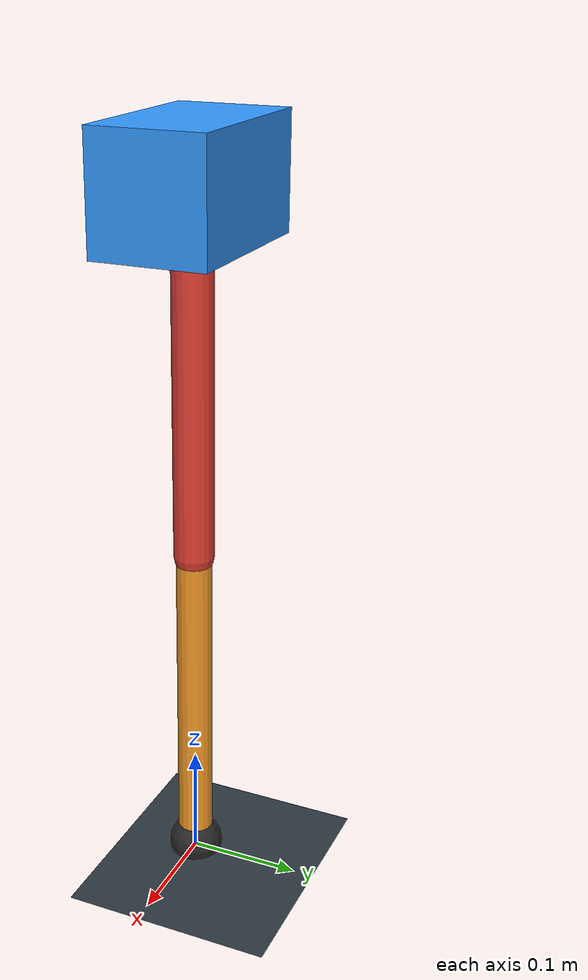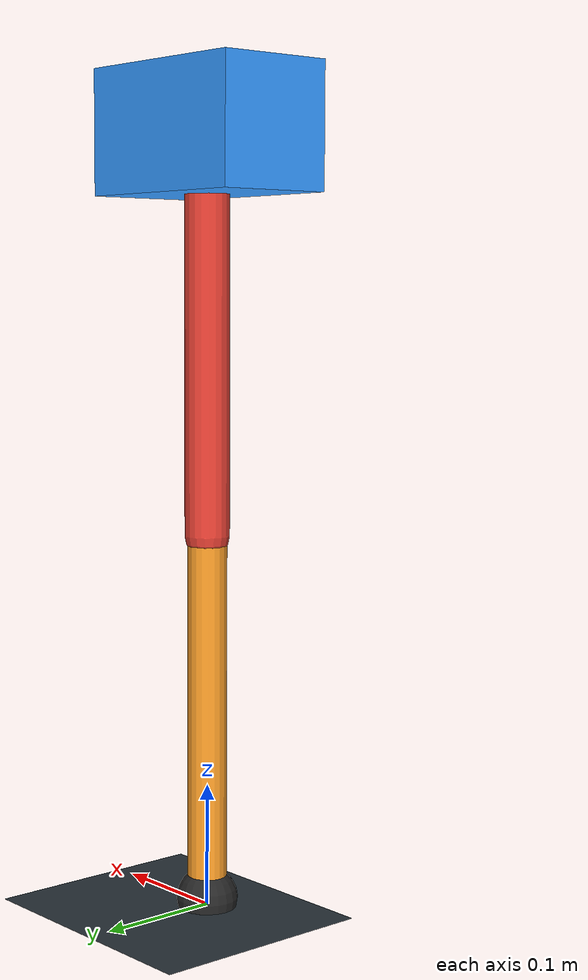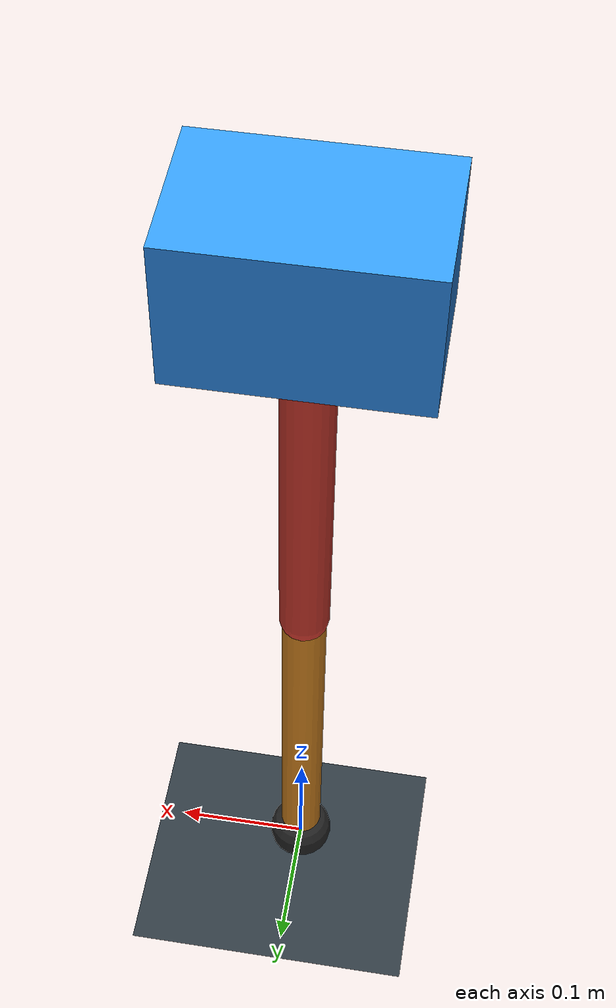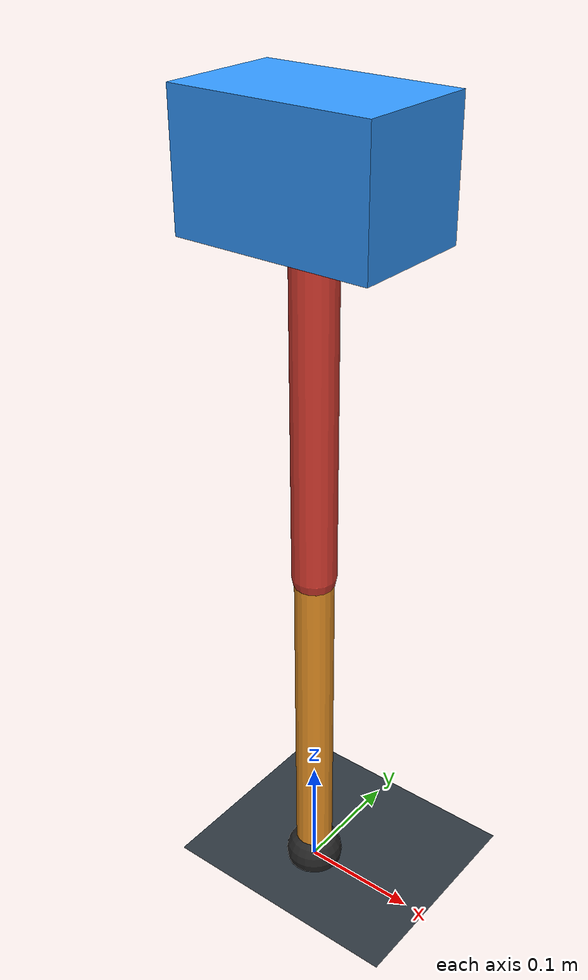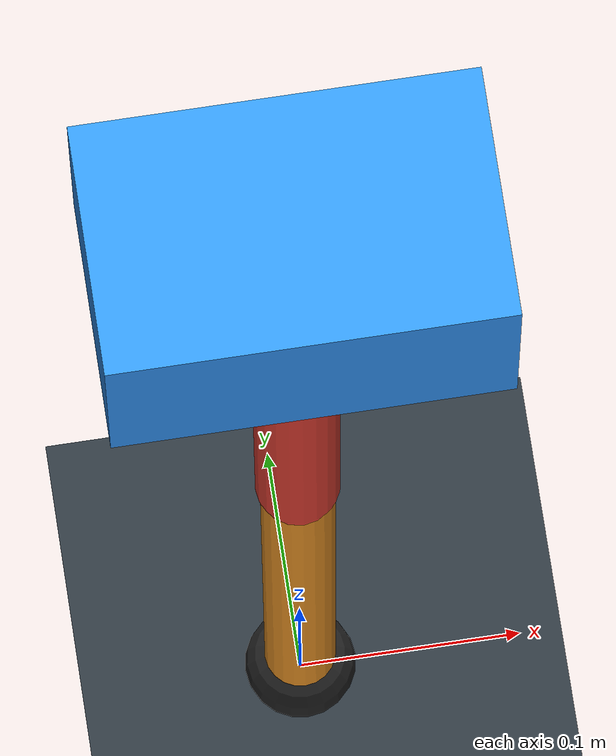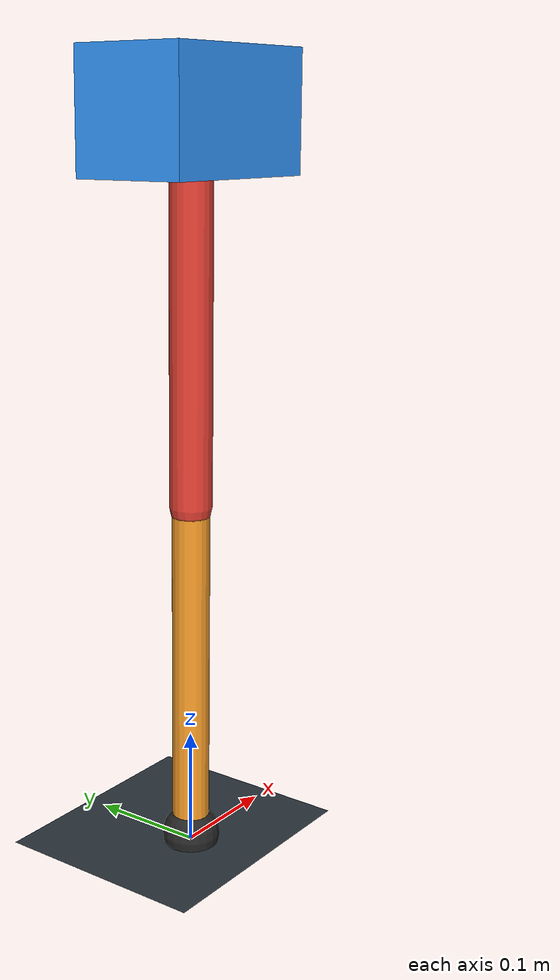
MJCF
<mujoco model="single_axis_two_bar">
  <compiler angle="radian" inertiafromgeom="true"/>
  <option timestep="0.001" integrator="implicitfast" gravity="0 0 -9.81"/>
  <default>
    <joint damping="0.08"/>
    <geom friction="1.2 0.01 0.0001" condim="3"/>
  </default>
  <worldbody>
    <geom name="floor" type="plane" size="5 5 0.1" rgba="0.18 0.22 0.25 1"/>
    <body name="carriage" pos="0 0 0.624510423960486">
      <joint name="pole_slide" type="slide" axis="0 0 1"/>
      <geom name="payload" type="box" size="0.08 0.05 0.05" mass="2.5768280357113453" rgba="0.2 0.6 1 1"/>
      <body name="thigh" pos="0 0 0">
        <joint name="hip" type="hinge" axis="0 1 0"/>
        <geom name="thigh_link" type="capsule" fromto="0 0 0 0 0 -0.3199428454912833" size="0.018" mass="0.22796350508424199" rgba="0.9 0.25 0.2 1"/>
        <body name="shank" pos="0 0 -0.3199428454912833">
          <joint name="knee" type="hinge" axis="0 1 0"/>
          <geom name="shank_link" type="capsule" fromto="0 0 0 0 0 -0.2981091379731352" size="0.016" mass="0.21240669997057107" rgba="0.95 0.6 0.15 1"/>
          <geom name="foot" type="sphere" pos="0 0 -0.2981091379731352" size="0.025" mass="0.03" rgba="0.15 0.15 0.15 1"/>
          <site name="toe" pos="0 0 -0.2981091379731352" size="0.008"/>
        </body>
      </body>
    </body>
  </worldbody>
  <actuator>
    <motor name="hip_motor" joint="hip" ctrlrange="-18.535535912939448 18.535535912939448"/>
    <motor name="knee_motor" joint="knee" ctrlrange="-50.31244635026767 50.31244635026767"/>
  </actuator>
</mujoco>
